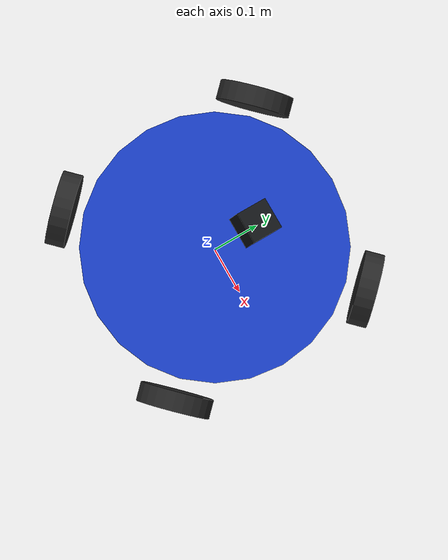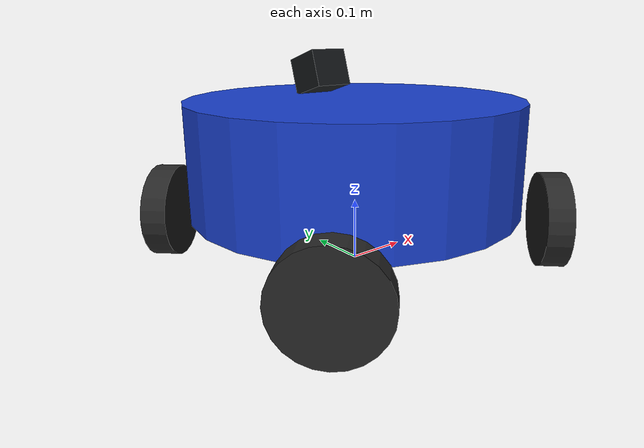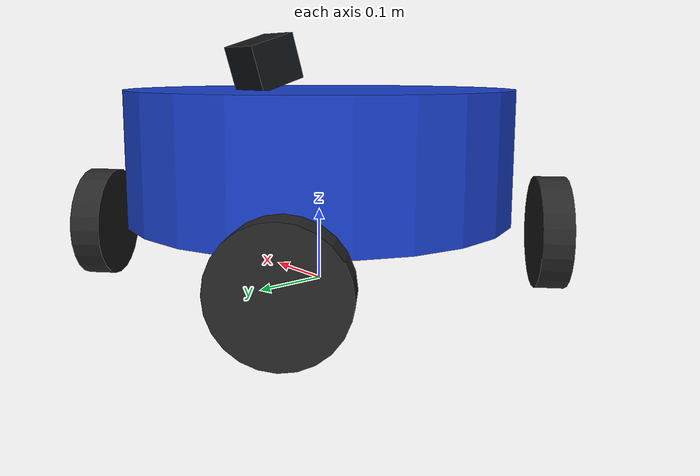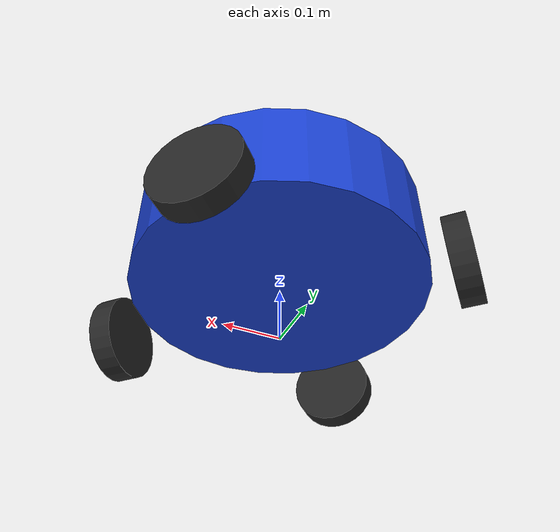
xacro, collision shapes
<?xml version="1.0"?>
<robot name="xxu" xmlns:xacro="http://www.ros.org/wiki/xacro">
  <!--
    XXU 简化模型
    TF 树：base_footprint -> base_link -> gimbal_link -> mid360_link，另含四个车轮帧。
    gimbal_link 由关节状态动态发布；odom -> base_footprint 由 Small Point-LIO 发布。
  -->

  <xacro:include filename="wheel.urdf.xacro"/>
  <xacro:include filename="livox_mid360.urdf.xacro"/>

  <!--
    尺寸参数（由毫米换算为米）。base_link 位于底盘底面上方 95.19 mm，
    因此底盘实体从 base_link 平面向上延伸到离地 269.49 mm。
  -->
  <xacro:property name="base_radius" value="0.265"/>
  <xacro:property name="base_link_z" value="0.09519"/>
  <xacro:property name="base_top_z" value="0.26949"/>
  <xacro:property name="base_height" value="${base_top_z - base_link_z}"/>
  <xacro:property name="base_mass" value="4.935"/>

  <!-- 云台上的雷达安装位姿，相对于 base_link：(0, 86.37, 193.8) mm。 -->
  <xacro:property name="mid360_x" value="0"/>
  <xacro:property name="mid360_y" value="0.08637"/>
  <xacro:property name="mid360_z" value="0.1938"/>
  <xacro:property name="mid360_xyz" value="${mid360_x} ${mid360_y} ${mid360_z}"/>
  <!--
    标称姿态：雷达位于 +Y 侧并绕 X 轴向车体外侧倾斜约 17°。
    按 ROS 右手坐标系取负 roll；云台自稳/自瞄时应由实时云台姿态发布动态 TF。
  -->
  <xacro:property name="mid360_roll" value="-0.2967059728"/>
  <xacro:property name="mid360_pitch" value="0"/>
  <xacro:property name="mid360_yaw" value="0"/>
  <xacro:property name="mid360_rpy" value="${mid360_roll} ${mid360_pitch} ${mid360_yaw}"/>

  <!-- 全向轮参数 -->
  <xacro:property name="wheel_radius" value="0.0762"/>
  <xacro:property name="wheel_width" value="0.04"/>
  <xacro:property name="wheel_mass" value="0.45"/>
  <!-- 446.55 mm 按相对两轮中心距解释，因此四轮坐标为 ±223.275 mm。 -->
  <xacro:property name="wheel_center_distance" value="0.44655"/>
  <xacro:property name="wheel_spacing" value="${wheel_center_distance / 2}"/>
  <!-- 轮子底部与地面相切：轮心相对 base_link 为 76.2-95.19=-18.99 mm。 -->
  <xacro:property name="wheel_z" value="${wheel_radius - base_link_z}"/>

  <!-- 颜色定义 -->
  <xacro:macro name="solid_material" params="name rgba">
    <material name="${name}">
      <color rgba="${rgba}"/>
    </material>
  </xacro:macro>

  <xacro:solid_material name="chassis_blue" rgba="0.10 0.25 0.80 1.0"/>
  <xacro:solid_material name="wheel_black" rgba="0.15 0.15 0.15 1.0"/>

  <!-- 固定关节宏 -->
  <xacro:macro name="fixed_joint" params="name parent child xyz:='0 0 0' rpy:='0 0 0'">
    <joint name="${name}" type="fixed">
      <parent link="${parent}"/>
      <child link="${child}"/>
      <origin xyz="${xyz}" rpy="${rpy}"/>
    </joint>
  </xacro:macro>

  <!-- 圆柱 link 宏，用于底盘主体 -->
  <xacro:macro name="cylinder_link" params="name radius length mass ixx iyy izz material origin_z:=0">
    <link name="${name}">
      <visual>
        <origin xyz="0 0 ${origin_z}" rpy="0 0 0"/>
        <geometry>
          <cylinder radius="${radius}" length="${length}"/>
        </geometry>
        <material name="${material}"/>
      </visual>
      <collision>
        <origin xyz="0 0 ${origin_z}" rpy="0 0 0"/>
        <geometry>
          <cylinder radius="${radius}" length="${length}"/>
        </geometry>
      </collision>
      <inertial>
        <origin xyz="0 0 ${origin_z}" rpy="0 0 0"/>
        <mass value="${mass}"/>
        <inertia ixx="${ixx}" ixy="0" ixz="0" iyy="${iyy}" iyz="0" izz="${izz}"/>
      </inertial>
    </link>
  </xacro:macro>

  <!-- 盒体 link 宏 -->
  <xacro:macro name="box_link" params="name size mass ixx iyy izz material">
    <link name="${name}">
      <visual>
        <origin xyz="0 0 0" rpy="0 0 0"/>
        <geometry>
          <box size="${size}"/>
        </geometry>
        <material name="${material}"/>
      </visual>
      <collision>
        <origin xyz="0 0 0" rpy="0 0 0"/>
        <geometry>
          <box size="${size}"/>
        </geometry>
      </collision>
      <inertial>
        <origin xyz="0 0 0" rpy="0 0 0"/>
        <mass value="${mass}"/>
        <inertia ixx="${ixx}" ixy="0" ixz="0" iyy="${iyy}" iyz="0" izz="${izz}"/>
      </inertial>
    </link>
  </xacro:macro>

  <!-- base_footprint：地面投影原点，odom 直接连接到该帧。base_link 在其上方 -->
  <link name="base_footprint"/>

  <!-- base_link -->
  <xacro:cylinder_link
    name="base_link"
    radius="${base_radius}"
    length="${base_height}"
    mass="${base_mass}"
    ixx="${base_mass * (3 * base_radius * base_radius + base_height * base_height) / 12}"
    iyy="${base_mass * (3 * base_radius * base_radius + base_height * base_height) / 12}"
    izz="${base_mass * base_radius * base_radius / 2}"
    material="chassis_blue"
    origin_z="${base_height / 2}"/>

  <xacro:fixed_joint name="base_footprint_joint" parent="base_footprint" child="base_link" xyz="0 0 ${base_link_z}"/>

  <!--
    gimbal_link 位于车体中心的云台转轴，角度由实机 /joint_states 驱动。
    雷达在云台 +Y 86.37 mm 处，17° 外倾角放在 gimbal_link -> mid360_link。
  -->
  <link name="gimbal_link"/>
  <joint name="gimbal_joint" type="continuous">
    <parent link="base_link"/>
    <child link="gimbal_link"/>
    <origin xyz="0 0 ${mid360_z}" rpy="0 0 0"/>
    <axis xyz="0 0 1"/>
    <limit effort="10" velocity="8"/>
  </joint>

  <!-- Rigid, level virtual body used by gimbal-motion-compensated LIO. -->
  <link name="lio_base_sensor"/>
  <xacro:fixed_joint
    name="lio_base_sensor_joint"
    parent="base_link"
    child="lio_base_sensor"
    xyz="0 0 ${mid360_z}"/>

  <!-- 与 Gazebo 模型共用同一套 MID-360 外形、碰撞和惯量。 -->
  <xacro:livox_mid360_link name="mid360_link"/>

  <xacro:fixed_joint
    name="mid360_joint"
    parent="gimbal_link"
    child="mid360_link"
    xyz="${mid360_x} ${mid360_y} 0"
    rpy="${mid360_rpy}"/>

  <!-- Official livox_ros_driver2 uses livox_frame for both MID360 streams. -->
  <link name="livox_frame"/>
  <xacro:fixed_joint
    name="livox_frame_joint"
    parent="mid360_link"
    child="livox_frame"/>

  <!-- 四轮全向轮底盘，轮轴朝向 base_link 中心 -->
  <xacro:wheel name="wheel_fl" radius="${wheel_radius}" width="${wheel_width}" mass="${wheel_mass}"/>
  <xacro:fixed_joint name="wheel_fl_joint" parent="base_link" child="wheel_fl"
    xyz="${wheel_spacing} ${wheel_spacing} ${wheel_z}" rpy="1.5708 0 -0.7854"/>

  <xacro:wheel name="wheel_fr" radius="${wheel_radius}" width="${wheel_width}" mass="${wheel_mass}"/>
  <xacro:fixed_joint name="wheel_fr_joint" parent="base_link" child="wheel_fr"
    xyz="${wheel_spacing} -${wheel_spacing} ${wheel_z}" rpy="1.5708 0 -2.3562"/>

  <xacro:wheel name="wheel_rl" radius="${wheel_radius}" width="${wheel_width}" mass="${wheel_mass}"/>
  <xacro:fixed_joint name="wheel_rl_joint" parent="base_link" child="wheel_rl"
    xyz="-${wheel_spacing} ${wheel_spacing} ${wheel_z}" rpy="1.5708 0 0.7854"/>

  <xacro:wheel name="wheel_rr" radius="${wheel_radius}" width="${wheel_width}" mass="${wheel_mass}"/>
  <xacro:fixed_joint name="wheel_rr_joint" parent="base_link" child="wheel_rr"
    xyz="-${wheel_spacing} -${wheel_spacing} ${wheel_z}" rpy="1.5708 0 2.3562"/>

</robot>

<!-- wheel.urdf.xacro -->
<robot xmlns:xacro="http://www.ros.org/wiki/xacro">

  <!-- 全向轮宏：视觉模型来自 YePeOn7/ros2_omni_robot_sim，碰撞体保留为简化圆柱。 -->
  <xacro:macro name="wheel" params="name radius width mass material:='wheel_black'">
    <xacro:property name="mesh_radial_scale" value="${radius / 0.0285}"/>
    <xacro:property name="mesh_axial_scale" value="${width / 0.0276}"/>
    <xacro:property name="mesh_center_y" value="0.0012"/>

    <link name="${name}">
      <visual>
        <origin xyz="0 0 ${-mesh_center_y * mesh_axial_scale}" rpy="1.5708 0 0"/>
        <geometry>
          <mesh
            filename="package://xxu_description/meshes/ros2_omni_robot_sim/generic/omni_wheel.stl"
            scale="${mesh_radial_scale} ${mesh_axial_scale} ${mesh_radial_scale}"/>
        </geometry>
        <material name="${material}"/>
      </visual>
      <collision>
        <origin xyz="0 0 0" rpy="0 0 0"/>
        <geometry>
          <cylinder radius="${radius}" length="${width}"/>
        </geometry>
      </collision>

      <inertial>
        <origin xyz="0 0 0" rpy="0 0 0"/>
        <mass value="${mass}"/>
        <inertia
          ixx="${mass * (3 * radius * radius + width * width) / 12}"
          ixy="0" ixz="0"
          iyy="${mass * (3 * radius * radius + width * width) / 12}"
          iyz="0"
          izz="${mass * radius * radius / 2}"/>
      </inertial>
    </link>
  </xacro:macro>

</robot>

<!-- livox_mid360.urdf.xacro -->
<robot xmlns:xacro="http://www.ros.org/wiki/xacro">
  <xacro:macro name="livox_mid360_link" params="name">
    <link name="${name}">
      <!-- 65 mm 方形下壳，坐标原点位于壳体内部偏下位置。 -->
      <visual name="body">
        <origin xyz="-0.003 0 0.0007" rpy="0 0 0"/>
        <geometry>
          <box size="0.065 0.065 0.028"/>
        </geometry>
        <material name="${name}_body_dark_gray">
          <color rgba="0.075 0.085 0.095 1.0"/>
        </material>
      </visual>

      <!-- 上部扫描窗：官方 CAD 外形向 +Z 逐渐收窄。 -->
      <visual name="optical_window">
        <origin xyz="-0.011 0 0.021" rpy="0 0 0"/>
        <geometry>
          <sphere radius="0.026"/>
        </geometry>
        <material name="${name}_optical_window">
          <color rgba="0.025 0.105 0.135 1.0"/>
        </material>
      </visual>

      <!-- 后侧 M12/航空接口的简化外形。 -->
      <visual name="connector">
        <origin xyz="-0.038 0 -0.003" rpy="0 1.5707963268 0"/>
        <geometry>
          <cylinder radius="0.008" length="0.012"/>
        </geometry>
        <material name="${name}_connector_black">
          <color rgba="0.025 0.025 0.025 1.0"/>
        </material>
      </visual>

      <!-- 保守而低开销的碰撞体，不让扫描窗复杂外形参与物理计算。 -->
      <collision>
        <origin xyz="0 0 0.0167" rpy="0 0 0"/>
        <geometry>
          <box size="0.065 0.065 0.060"/>
        </geometry>
      </collision>

      <!-- 以 65 x 65 x 60 mm 均匀盒体近似 265 g 雷达的惯量。 -->
      <inertial>
        <origin xyz="0 0 0.0167" rpy="0 0 0"/>
        <mass value="0.265"/>
        <inertia
          ixx="0.000172796"
          ixy="0" ixz="0"
          iyy="0.000172796"
          iyz="0"
          izz="0.000186604"/>
      </inertial>
    </link>
  </xacro:macro>
</robot>
